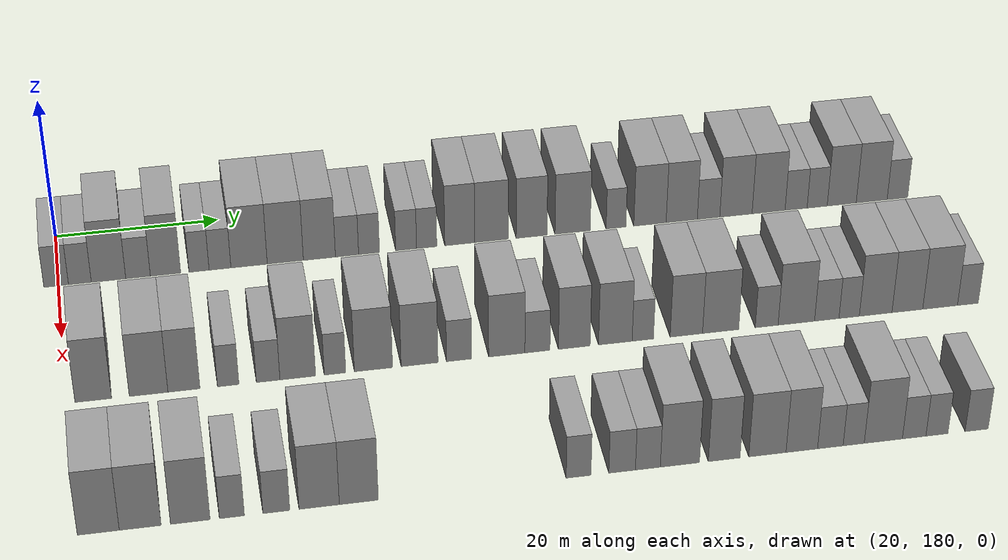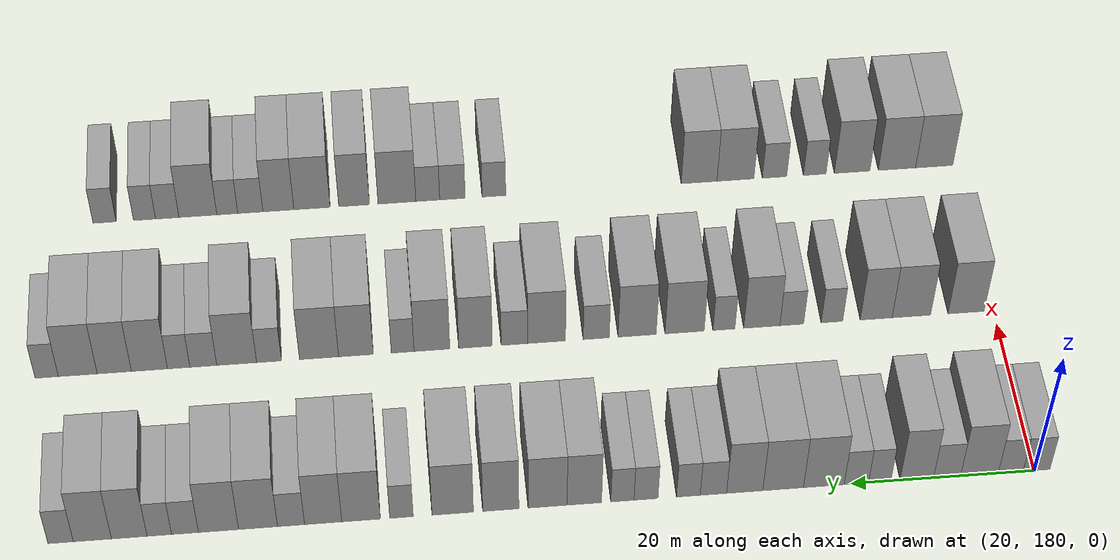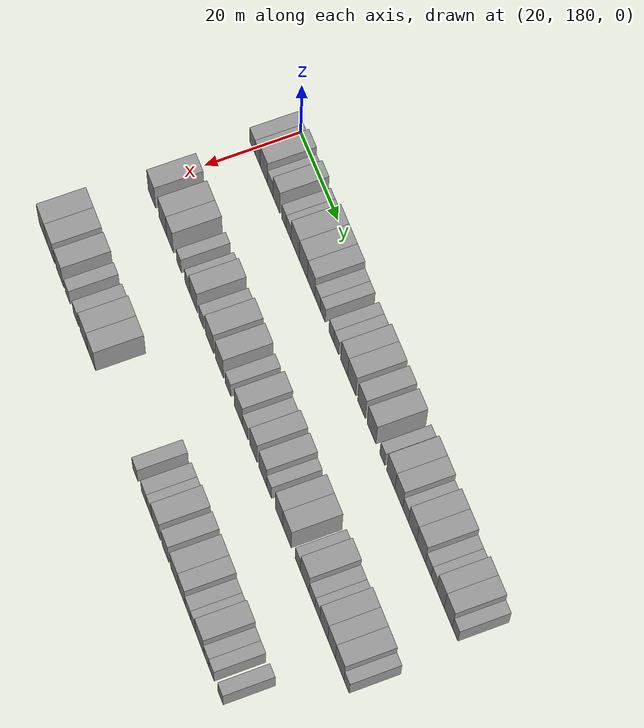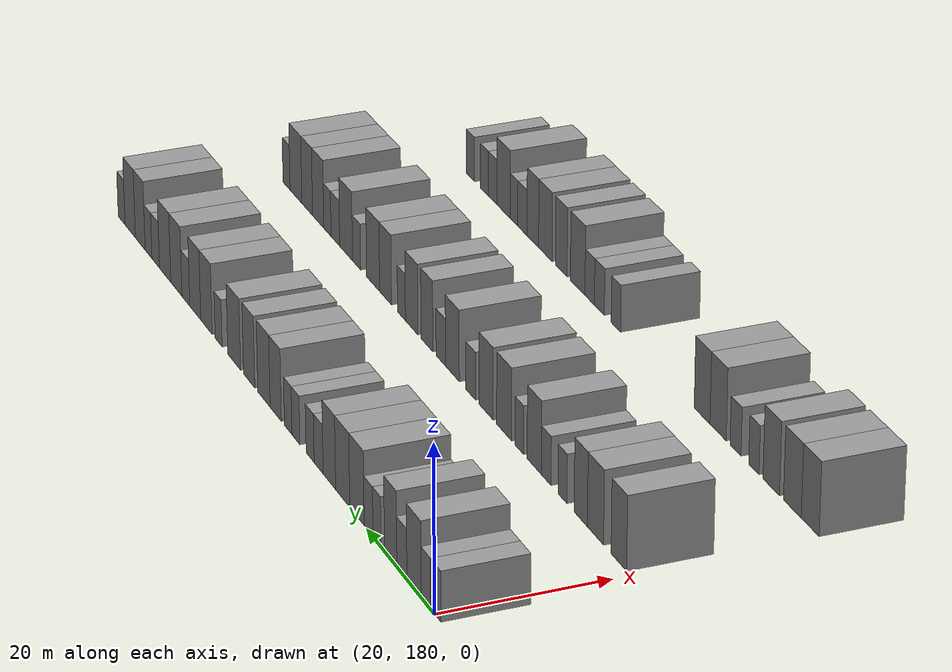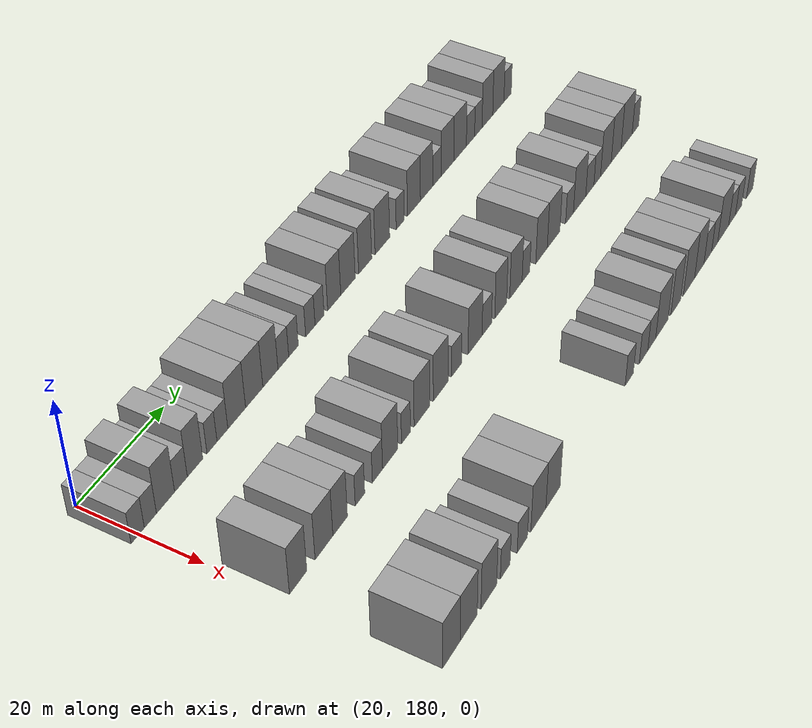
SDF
<sdf version="1.6">
 <world name="default">
  <model name="building_134">
   <static>1</static>
   <pose>25.0000 179.7267 0 0.000000 0.000000 0.000000</pose>
   <link name="link">
    <pose>0 0 3.00 0 0 0</pose>
    <collision name="collision"><geometry><box><size>10.0000 2.9367 6.0000</size></box></geometry></collision>
    <visual name="visual">
     <cast_shadows>0</cast_shadows>
     <geometry><box><size>10.0000 2.9367 6.0000</size></box></geometry>
     <material>
      <script>
       <uri>model://grey_wall/materials/scripts</uri>
       <uri>model://grey_wall/materials/textures</uri>
       <name>vrc/grey_wall</name>
      </script>
     </material>
    </visual>
   </link>
  </model>
  <model name="building_135">
   <static>1</static>
   <pose>25.0000 182.5558 0 0.000000 0.000000 0.000000</pose>
   <link name="link">
    <pose>0 0 3.00 0 0 0</pose>
    <collision name="collision"><geometry><box><size>10.0000 2.7216 6.0000</size></box></geometry></collision>
    <visual name="visual">
     <cast_shadows>0</cast_shadows>
     <geometry><box><size>10.0000 2.7216 6.0000</size></box></geometry>
     <material>
      <script>
       <uri>model://grey_wall/materials/scripts</uri>
       <uri>model://grey_wall/materials/textures</uri>
       <name>vrc/grey_wall</name>
      </script>
     </material>
    </visual>
   </link>
  </model>
  <model name="building_136">
   <static>1</static>
   <pose>25.0000 185.9804 0 0.000000 0.000000 0.000000</pose>
   <link name="link">
    <pose>0 0 4.50 0 0 0</pose>
    <collision name="collision"><geometry><box><size>10.0000 4.1276 9.0000</size></box></geometry></collision>
    <visual name="visual">
     <cast_shadows>0</cast_shadows>
     <geometry><box><size>10.0000 4.1276 9.0000</size></box></geometry>
     <material>
      <script>
       <uri>model://grey_wall/materials/scripts</uri>
       <uri>model://grey_wall/materials/textures</uri>
       <name>vrc/grey_wall</name>
      </script>
     </material>
    </visual>
   </link>
  </model>
  <model name="building_137">
   <static>1</static>
   <pose>25.0000 189.5231 0 0.000000 0.000000 0.000000</pose>
   <link name="link">
    <pose>0 0 3.00 0 0 0</pose>
    <collision name="collision"><geometry><box><size>10.0000 2.9577 6.0000</size></box></geometry></collision>
    <visual name="visual">
     <cast_shadows>0</cast_shadows>
     <geometry><box><size>10.0000 2.9577 6.0000</size></box></geometry>
     <material>
      <script>
       <uri>model://grey_wall/materials/scripts</uri>
       <uri>model://grey_wall/materials/textures</uri>
       <name>vrc/grey_wall</name>
      </script>
     </material>
    </visual>
   </link>
  </model>
  <model name="building_138">
   <static>1</static>
   <pose>25.0000 192.8265 0 0.000000 0.000000 0.000000</pose>
   <link name="link">
    <pose>0 0 4.50 0 0 0</pose>
    <collision name="collision"><geometry><box><size>10.0000 3.6492 9.0000</size></box></geometry></collision>
    <visual name="visual">
     <cast_shadows>0</cast_shadows>
     <geometry><box><size>10.0000 3.6492 9.0000</size></box></geometry>
     <material>
      <script>
       <uri>model://grey_wall/materials/scripts</uri>
       <uri>model://grey_wall/materials/textures</uri>
       <name>vrc/grey_wall</name>
      </script>
     </material>
    </visual>
   </link>
  </model>
  <model name="building_139">
   <static>1</static>
   <pose>25.0000 196.8674 0 0.000000 0.000000 0.000000</pose>
   <link name="link">
    <pose>0 0 3.00 0 0 0</pose>
    <collision name="collision"><geometry><box><size>10.0000 2.4325 6.0000</size></box></geometry></collision>
    <visual name="visual">
     <cast_shadows>0</cast_shadows>
     <geometry><box><size>10.0000 2.4325 6.0000</size></box></geometry>
     <material>
      <script>
       <uri>model://grey_wall/materials/scripts</uri>
       <uri>model://grey_wall/materials/textures</uri>
       <name>vrc/grey_wall</name>
      </script>
     </material>
    </visual>
   </link>
  </model>
  <model name="building_140">
   <static>1</static>
   <pose>25.0000 199.4056 0 0.000000 0.000000 0.000000</pose>
   <link name="link">
    <pose>0 0 3.00 0 0 0</pose>
    <collision name="collision"><geometry><box><size>10.0000 2.6439 6.0000</size></box></geometry></collision>
    <visual name="visual">
     <cast_shadows>0</cast_shadows>
     <geometry><box><size>10.0000 2.6439 6.0000</size></box></geometry>
     <material>
      <script>
       <uri>model://grey_wall/materials/scripts</uri>
       <uri>model://grey_wall/materials/textures</uri>
       <name>vrc/grey_wall</name>
      </script>
     </material>
    </visual>
   </link>
  </model>
  <model name="building_141">
   <static>1</static>
   <pose>25.0000 202.9381 0 0.000000 0.000000 0.000000</pose>
   <link name="link">
    <pose>0 0 4.50 0 0 0</pose>
    <collision name="collision"><geometry><box><size>10.0000 4.4211 9.0000</size></box></geometry></collision>
    <visual name="visual">
     <cast_shadows>0</cast_shadows>
     <geometry><box><size>10.0000 4.4211 9.0000</size></box></geometry>
     <material>
      <script>
       <uri>model://grey_wall/materials/scripts</uri>
       <uri>model://grey_wall/materials/textures</uri>
       <name>vrc/grey_wall</name>
      </script>
     </material>
    </visual>
   </link>
  </model>
  <model name="building_142">
   <static>1</static>
   <pose>25.0000 207.3509 0 0.000000 0.000000 0.000000</pose>
   <link name="link">
    <pose>0 0 4.50 0 0 0</pose>
    <collision name="collision"><geometry><box><size>10.0000 4.4045 9.0000</size></box></geometry></collision>
    <visual name="visual">
     <cast_shadows>0</cast_shadows>
     <geometry><box><size>10.0000 4.4045 9.0000</size></box></geometry>
     <material>
      <script>
       <uri>model://grey_wall/materials/scripts</uri>
       <uri>model://grey_wall/materials/textures</uri>
       <name>vrc/grey_wall</name>
      </script>
     </material>
    </visual>
   </link>
  </model>
  <model name="building_143">
   <static>1</static>
   <pose>25.0000 211.5168 0 0.000000 0.000000 0.000000</pose>
   <link name="link">
    <pose>0 0 4.50 0 0 0</pose>
    <collision name="collision"><geometry><box><size>10.0000 3.9274 9.0000</size></box></geometry></collision>
    <visual name="visual">
     <cast_shadows>0</cast_shadows>
     <geometry><box><size>10.0000 3.9274 9.0000</size></box></geometry>
     <material>
      <script>
       <uri>model://grey_wall/materials/scripts</uri>
       <uri>model://grey_wall/materials/textures</uri>
       <name>vrc/grey_wall</name>
      </script>
     </material>
    </visual>
   </link>
  </model>
  <model name="building_144">
   <static>1</static>
   <pose>25.0000 214.9024 0 0.000000 0.000000 0.000000</pose>
   <link name="link">
    <pose>0 0 3.00 0 0 0</pose>
    <collision name="collision"><geometry><box><size>10.0000 2.8437 6.0000</size></box></geometry></collision>
    <visual name="visual">
     <cast_shadows>0</cast_shadows>
     <geometry><box><size>10.0000 2.8437 6.0000</size></box></geometry>
     <material>
      <script>
       <uri>model://grey_wall/materials/scripts</uri>
       <uri>model://grey_wall/materials/textures</uri>
       <name>vrc/grey_wall</name>
      </script>
     </material>
    </visual>
   </link>
  </model>
  <model name="building_145">
   <static>1</static>
   <pose>25.0000 217.6090 0 0.000000 0.000000 0.000000</pose>
   <link name="link">
    <pose>0 0 3.00 0 0 0</pose>
    <collision name="collision"><geometry><box><size>10.0000 2.5694 6.0000</size></box></geometry></collision>
    <visual name="visual">
     <cast_shadows>0</cast_shadows>
     <geometry><box><size>10.0000 2.5694 6.0000</size></box></geometry>
     <material>
      <script>
       <uri>model://grey_wall/materials/scripts</uri>
       <uri>model://grey_wall/materials/textures</uri>
       <name>vrc/grey_wall</name>
      </script>
     </material>
    </visual>
   </link>
  </model>
  <model name="building_146">
   <static>1</static>
   <pose>25.0000 222.1825 0 0.000000 0.000000 0.000000</pose>
   <link name="link">
    <pose>0 0 3.00 0 0 0</pose>
    <collision name="collision"><geometry><box><size>10.0000 2.5777 6.0000</size></box></geometry></collision>
    <visual name="visual">
     <cast_shadows>0</cast_shadows>
     <geometry><box><size>10.0000 2.5777 6.0000</size></box></geometry>
     <material>
      <script>
       <uri>model://grey_wall/materials/scripts</uri>
       <uri>model://grey_wall/materials/textures</uri>
       <name>vrc/grey_wall</name>
      </script>
     </material>
    </visual>
   </link>
  </model>
  <model name="building_147">
   <static>1</static>
   <pose>25.0000 224.7205 0 0.000000 0.000000 0.000000</pose>
   <link name="link">
    <pose>0 0 3.00 0 0 0</pose>
    <collision name="collision"><geometry><box><size>10.0000 2.4983 6.0000</size></box></geometry></collision>
    <visual name="visual">
     <cast_shadows>0</cast_shadows>
     <geometry><box><size>10.0000 2.4983 6.0000</size></box></geometry>
     <material>
      <script>
       <uri>model://grey_wall/materials/scripts</uri>
       <uri>model://grey_wall/materials/textures</uri>
       <name>vrc/grey_wall</name>
      </script>
     </material>
    </visual>
   </link>
  </model>
  <model name="building_148">
   <static>1</static>
   <pose>25.0000 228.8245 0 0.000000 0.000000 0.000000</pose>
   <link name="link">
    <pose>0 0 4.50 0 0 0</pose>
    <collision name="collision"><geometry><box><size>10.0000 3.7097 9.0000</size></box></geometry></collision>
    <visual name="visual">
     <cast_shadows>0</cast_shadows>
     <geometry><box><size>10.0000 3.7097 9.0000</size></box></geometry>
     <material>
      <script>
       <uri>model://grey_wall/materials/scripts</uri>
       <uri>model://grey_wall/materials/textures</uri>
       <name>vrc/grey_wall</name>
      </script>
     </material>
    </visual>
   </link>
  </model>
  <model name="building_149">
   <static>1</static>
   <pose>25.0000 232.7658 0 0.000000 0.000000 0.000000</pose>
   <link name="link">
    <pose>0 0 4.50 0 0 0</pose>
    <collision name="collision"><geometry><box><size>10.0000 4.1727 9.0000</size></box></geometry></collision>
    <visual name="visual">
     <cast_shadows>0</cast_shadows>
     <geometry><box><size>10.0000 4.1727 9.0000</size></box></geometry>
     <material>
      <script>
       <uri>model://grey_wall/materials/scripts</uri>
       <uri>model://grey_wall/materials/textures</uri>
       <name>vrc/grey_wall</name>
      </script>
     </material>
    </visual>
   </link>
  </model>
  <model name="building_150">
   <static>1</static>
   <pose>25.0000 237.7819 0 0.000000 0.000000 0.000000</pose>
   <link name="link">
    <pose>0 0 4.50 0 0 0</pose>
    <collision name="collision"><geometry><box><size>10.0000 3.8595 9.0000</size></box></geometry></collision>
    <visual name="visual">
     <cast_shadows>0</cast_shadows>
     <geometry><box><size>10.0000 3.8595 9.0000</size></box></geometry>
     <material>
      <script>
       <uri>model://grey_wall/materials/scripts</uri>
       <uri>model://grey_wall/materials/textures</uri>
       <name>vrc/grey_wall</name>
      </script>
     </material>
    </visual>
   </link>
  </model>
  <model name="building_151">
   <static>1</static>
   <pose>25.0000 242.9237 0 0.000000 0.000000 0.000000</pose>
   <link name="link">
    <pose>0 0 4.50 0 0 0</pose>
    <collision name="collision"><geometry><box><size>10.0000 4.4240 9.0000</size></box></geometry></collision>
    <visual name="visual">
     <cast_shadows>0</cast_shadows>
     <geometry><box><size>10.0000 4.4240 9.0000</size></box></geometry>
     <material>
      <script>
       <uri>model://grey_wall/materials/scripts</uri>
       <uri>model://grey_wall/materials/textures</uri>
       <name>vrc/grey_wall</name>
      </script>
     </material>
    </visual>
   </link>
  </model>
  <model name="building_152">
   <static>1</static>
   <pose>25.0000 248.3873 0 0.000000 0.000000 0.000000</pose>
   <link name="link">
    <pose>0 0 3.00 0 0 0</pose>
    <collision name="collision"><geometry><box><size>10.0000 2.5032 6.0000</size></box></geometry></collision>
    <visual name="visual">
     <cast_shadows>0</cast_shadows>
     <geometry><box><size>10.0000 2.5032 6.0000</size></box></geometry>
     <material>
      <script>
       <uri>model://grey_wall/materials/scripts</uri>
       <uri>model://grey_wall/materials/textures</uri>
       <name>vrc/grey_wall</name>
      </script>
     </material>
    </visual>
   </link>
  </model>
  <model name="building_153">
   <static>1</static>
   <pose>25.0000 252.6890 0 0.000000 0.000000 0.000000</pose>
   <link name="link">
    <pose>0 0 4.50 0 0 0</pose>
    <collision name="collision"><geometry><box><size>10.0000 4.1002 9.0000</size></box></geometry></collision>
    <visual name="visual">
     <cast_shadows>0</cast_shadows>
     <geometry><box><size>10.0000 4.1002 9.0000</size></box></geometry>
     <material>
      <script>
       <uri>model://grey_wall/materials/scripts</uri>
       <uri>model://grey_wall/materials/textures</uri>
       <name>vrc/grey_wall</name>
      </script>
     </material>
    </visual>
   </link>
  </model>
  <model name="building_154">
   <static>1</static>
   <pose>25.0000 256.7204 0 0.000000 0.000000 0.000000</pose>
   <link name="link">
    <pose>0 0 4.50 0 0 0</pose>
    <collision name="collision"><geometry><box><size>10.0000 3.9628 9.0000</size></box></geometry></collision>
    <visual name="visual">
     <cast_shadows>0</cast_shadows>
     <geometry><box><size>10.0000 3.9628 9.0000</size></box></geometry>
     <material>
      <script>
       <uri>model://grey_wall/materials/scripts</uri>
       <uri>model://grey_wall/materials/textures</uri>
       <name>vrc/grey_wall</name>
      </script>
     </material>
    </visual>
   </link>
  </model>
  <model name="building_155">
   <static>1</static>
   <pose>25.0000 260.1354 0 0.000000 0.000000 0.000000</pose>
   <link name="link">
    <pose>0 0 3.00 0 0 0</pose>
    <collision name="collision"><geometry><box><size>10.0000 2.8671 6.0000</size></box></geometry></collision>
    <visual name="visual">
     <cast_shadows>0</cast_shadows>
     <geometry><box><size>10.0000 2.8671 6.0000</size></box></geometry>
     <material>
      <script>
       <uri>model://grey_wall/materials/scripts</uri>
       <uri>model://grey_wall/materials/textures</uri>
       <name>vrc/grey_wall</name>
      </script>
     </material>
    </visual>
   </link>
  </model>
  <model name="building_156">
   <static>1</static>
   <pose>25.0000 263.6339 0 0.000000 0.000000 0.000000</pose>
   <link name="link">
    <pose>0 0 4.50 0 0 0</pose>
    <collision name="collision"><geometry><box><size>10.0000 4.1300 9.0000</size></box></geometry></collision>
    <visual name="visual">
     <cast_shadows>0</cast_shadows>
     <geometry><box><size>10.0000 4.1300 9.0000</size></box></geometry>
     <material>
      <script>
       <uri>model://grey_wall/materials/scripts</uri>
       <uri>model://grey_wall/materials/textures</uri>
       <name>vrc/grey_wall</name>
      </script>
     </material>
    </visual>
   </link>
  </model>
  <model name="building_157">
   <static>1</static>
   <pose>25.0000 267.8165 0 0.000000 0.000000 0.000000</pose>
   <link name="link">
    <pose>0 0 4.50 0 0 0</pose>
    <collision name="collision"><geometry><box><size>10.0000 4.2351 9.0000</size></box></geometry></collision>
    <visual name="visual">
     <cast_shadows>0</cast_shadows>
     <geometry><box><size>10.0000 4.2351 9.0000</size></box></geometry>
     <material>
      <script>
       <uri>model://grey_wall/materials/scripts</uri>
       <uri>model://grey_wall/materials/textures</uri>
       <name>vrc/grey_wall</name>
      </script>
     </material>
    </visual>
   </link>
  </model>
  <model name="building_158">
   <static>1</static>
   <pose>25.0000 271.3555 0 0.000000 0.000000 0.000000</pose>
   <link name="link">
    <pose>0 0 3.00 0 0 0</pose>
    <collision name="collision"><geometry><box><size>10.0000 2.8431 6.0000</size></box></geometry></collision>
    <visual name="visual">
     <cast_shadows>0</cast_shadows>
     <geometry><box><size>10.0000 2.8431 6.0000</size></box></geometry>
     <material>
      <script>
       <uri>model://grey_wall/materials/scripts</uri>
       <uri>model://grey_wall/materials/textures</uri>
       <name>vrc/grey_wall</name>
      </script>
     </material>
    </visual>
   </link>
  </model>
  <model name="building_159">
   <static>1</static>
   <pose>25.0000 274.0740 0 0.000000 0.000000 0.000000</pose>
   <link name="link">
    <pose>0 0 3.00 0 0 0</pose>
    <collision name="collision"><geometry><box><size>10.0000 2.5939 6.0000</size></box></geometry></collision>
    <visual name="visual">
     <cast_shadows>0</cast_shadows>
     <geometry><box><size>10.0000 2.5939 6.0000</size></box></geometry>
     <material>
      <script>
       <uri>model://grey_wall/materials/scripts</uri>
       <uri>model://grey_wall/materials/textures</uri>
       <name>vrc/grey_wall</name>
      </script>
     </material>
    </visual>
   </link>
  </model>
  <model name="building_160">
   <static>1</static>
   <pose>25.0000 277.2462 0 0.000000 0.000000 0.000000</pose>
   <link name="link">
    <pose>0 0 4.50 0 0 0</pose>
    <collision name="collision"><geometry><box><size>10.0000 3.7505 9.0000</size></box></geometry></collision>
    <visual name="visual">
     <cast_shadows>0</cast_shadows>
     <geometry><box><size>10.0000 3.7505 9.0000</size></box></geometry>
     <material>
      <script>
       <uri>model://grey_wall/materials/scripts</uri>
       <uri>model://grey_wall/materials/textures</uri>
       <name>vrc/grey_wall</name>
      </script>
     </material>
    </visual>
   </link>
  </model>
  <model name="building_161">
   <static>1</static>
   <pose>25.0000 281.1280 0 0.000000 0.000000 0.000000</pose>
   <link name="link">
    <pose>0 0 4.50 0 0 0</pose>
    <collision name="collision"><geometry><box><size>10.0000 4.0131 9.0000</size></box></geometry></collision>
    <visual name="visual">
     <cast_shadows>0</cast_shadows>
     <geometry><box><size>10.0000 4.0131 9.0000</size></box></geometry>
     <material>
      <script>
       <uri>model://grey_wall/materials/scripts</uri>
       <uri>model://grey_wall/materials/textures</uri>
       <name>vrc/grey_wall</name>
      </script>
     </material>
    </visual>
   </link>
  </model>
  <model name="building_162">
   <static>1</static>
   <pose>25.0000 284.4673 0 0.000000 0.000000 0.000000</pose>
   <link name="link">
    <pose>0 0 3.00 0 0 0</pose>
    <collision name="collision"><geometry><box><size>10.0000 2.6654 6.0000</size></box></geometry></collision>
    <visual name="visual">
     <cast_shadows>0</cast_shadows>
     <geometry><box><size>10.0000 2.6654 6.0000</size></box></geometry>
     <material>
      <script>
       <uri>model://grey_wall/materials/scripts</uri>
       <uri>model://grey_wall/materials/textures</uri>
       <name>vrc/grey_wall</name>
      </script>
     </material>
    </visual>
   </link>
  </model>
  <model name="building_311">
   <static>1</static>
   <pose>47.0000 183.1259 0 0.000000 0.000000 0.000000</pose>
   <link name="link">
    <pose>0 0 4.50 0 0 0</pose>
    <collision name="collision"><geometry><box><size>10.0000 4.1401 9.0000</size></box></geometry></collision>
    <visual name="visual">
     <cast_shadows>0</cast_shadows>
     <geometry><box><size>10.0000 4.1401 9.0000</size></box></geometry>
     <material>
      <script>
       <uri>model://grey_wall/materials/scripts</uri>
       <uri>model://grey_wall/materials/textures</uri>
       <name>vrc/grey_wall</name>
      </script>
     </material>
    </visual>
   </link>
  </model>
  <model name="building_312">
   <static>1</static>
   <pose>47.0000 189.3923 0 0.000000 0.000000 0.000000</pose>
   <link name="link">
    <pose>0 0 4.50 0 0 0</pose>
    <collision name="collision"><geometry><box><size>10.0000 4.3926 9.0000</size></box></geometry></collision>
    <visual name="visual">
     <cast_shadows>0</cast_shadows>
     <geometry><box><size>10.0000 4.3926 9.0000</size></box></geometry>
     <material>
      <script>
       <uri>model://grey_wall/materials/scripts</uri>
       <uri>model://grey_wall/materials/textures</uri>
       <name>vrc/grey_wall</name>
      </script>
     </material>
    </visual>
   </link>
  </model>
  <model name="building_313">
   <static>1</static>
   <pose>47.0000 193.4168 0 0.000000 0.000000 0.000000</pose>
   <link name="link">
    <pose>0 0 4.50 0 0 0</pose>
    <collision name="collision"><geometry><box><size>10.0000 3.6564 9.0000</size></box></geometry></collision>
    <visual name="visual">
     <cast_shadows>0</cast_shadows>
     <geometry><box><size>10.0000 3.6564 9.0000</size></box></geometry>
     <material>
      <script>
       <uri>model://grey_wall/materials/scripts</uri>
       <uri>model://grey_wall/materials/textures</uri>
       <name>vrc/grey_wall</name>
      </script>
     </material>
    </visual>
   </link>
  </model>
  <model name="building_314">
   <static>1</static>
   <pose>47.0000 198.4747 0 0.000000 0.000000 0.000000</pose>
   <link name="link">
    <pose>0 0 3.00 0 0 0</pose>
    <collision name="collision"><geometry><box><size>10.0000 2.4593 6.0000</size></box></geometry></collision>
    <visual name="visual">
     <cast_shadows>0</cast_shadows>
     <geometry><box><size>10.0000 2.4593 6.0000</size></box></geometry>
     <material>
      <script>
       <uri>model://grey_wall/materials/scripts</uri>
       <uri>model://grey_wall/materials/textures</uri>
       <name>vrc/grey_wall</name>
      </script>
     </material>
    </visual>
   </link>
  </model>
  <model name="building_315">
   <static>1</static>
   <pose>47.0000 203.0612 0 0.000000 0.000000 0.000000</pose>
   <link name="link">
    <pose>0 0 3.00 0 0 0</pose>
    <collision name="collision"><geometry><box><size>10.0000 2.7138 6.0000</size></box></geometry></collision>
    <visual name="visual">
     <cast_shadows>0</cast_shadows>
     <geometry><box><size>10.0000 2.7138 6.0000</size></box></geometry>
     <material>
      <script>
       <uri>model://grey_wall/materials/scripts</uri>
       <uri>model://grey_wall/materials/textures</uri>
       <name>vrc/grey_wall</name>
      </script>
     </material>
    </visual>
   </link>
  </model>
  <model name="building_316">
   <static>1</static>
   <pose>47.0000 206.4744 0 0.000000 0.000000 0.000000</pose>
   <link name="link">
    <pose>0 0 4.50 0 0 0</pose>
    <collision name="collision"><geometry><box><size>10.0000 4.1125 9.0000</size></box></geometry></collision>
    <visual name="visual">
     <cast_shadows>0</cast_shadows>
     <geometry><box><size>10.0000 4.1125 9.0000</size></box></geometry>
     <material>
      <script>
       <uri>model://grey_wall/materials/scripts</uri>
       <uri>model://grey_wall/materials/textures</uri>
       <name>vrc/grey_wall</name>
      </script>
     </material>
    </visual>
   </link>
  </model>
  <model name="building_317">
   <static>1</static>
   <pose>47.0000 210.7761 0 0.000000 0.000000 0.000000</pose>
   <link name="link">
    <pose>0 0 3.00 0 0 0</pose>
    <collision name="collision"><geometry><box><size>10.0000 2.4908 6.0000</size></box></geometry></collision>
    <visual name="visual">
     <cast_shadows>0</cast_shadows>
     <geometry><box><size>10.0000 2.4908 6.0000</size></box></geometry>
     <material>
      <script>
       <uri>model://grey_wall/materials/scripts</uri>
       <uri>model://grey_wall/materials/textures</uri>
       <name>vrc/grey_wall</name>
      </script>
     </material>
    </visual>
   </link>
  </model>
  <model name="building_318">
   <static>1</static>
   <pose>47.0000 215.2409 0 0.000000 0.000000 0.000000</pose>
   <link name="link">
    <pose>0 0 4.50 0 0 0</pose>
    <collision name="collision"><geometry><box><size>10.0000 4.4387 9.0000</size></box></geometry></collision>
    <visual name="visual">
     <cast_shadows>0</cast_shadows>
     <geometry><box><size>10.0000 4.4387 9.0000</size></box></geometry>
     <material>
      <script>
       <uri>model://grey_wall/materials/scripts</uri>
       <uri>model://grey_wall/materials/textures</uri>
       <name>vrc/grey_wall</name>
      </script>
     </material>
    </visual>
   </link>
  </model>
  <model name="building_319">
   <static>1</static>
   <pose>47.0000 220.6147 0 0.000000 0.000000 0.000000</pose>
   <link name="link">
    <pose>0 0 4.50 0 0 0</pose>
    <collision name="collision"><geometry><box><size>10.0000 4.3089 9.0000</size></box></geometry></collision>
    <visual name="visual">
     <cast_shadows>0</cast_shadows>
     <geometry><box><size>10.0000 4.3089 9.0000</size></box></geometry>
     <material>
      <script>
       <uri>model://grey_wall/materials/scripts</uri>
       <uri>model://grey_wall/materials/textures</uri>
       <name>vrc/grey_wall</name>
      </script>
     </material>
    </visual>
   </link>
  </model>
  <model name="building_320">
   <static>1</static>
   <pose>47.0000 225.2439 0 0.000000 0.000000 0.000000</pose>
   <link name="link">
    <pose>0 0 3.00 0 0 0</pose>
    <collision name="collision"><geometry><box><size>10.0000 2.9495 6.0000</size></box></geometry></collision>
    <visual name="visual">
     <cast_shadows>0</cast_shadows>
     <geometry><box><size>10.0000 2.9495 6.0000</size></box></geometry>
     <material>
      <script>
       <uri>model://grey_wall/materials/scripts</uri>
       <uri>model://grey_wall/materials/textures</uri>
       <name>vrc/grey_wall</name>
      </script>
     </material>
    </visual>
   </link>
  </model>
  <model name="building_321">
   <static>1</static>
   <pose>47.0000 230.8555 0 0.000000 0.000000 0.000000</pose>
   <link name="link">
    <pose>0 0 4.50 0 0 0</pose>
    <collision name="collision"><geometry><box><size>10.0000 4.2738 9.0000</size></box></geometry></collision>
    <visual name="visual">
     <cast_shadows>0</cast_shadows>
     <geometry><box><size>10.0000 4.2738 9.0000</size></box></geometry>
     <material>
      <script>
       <uri>model://grey_wall/materials/scripts</uri>
       <uri>model://grey_wall/materials/textures</uri>
       <name>vrc/grey_wall</name>
      </script>
     </material>
    </visual>
   </link>
  </model>
  <model name="building_322">
   <static>1</static>
   <pose>47.0000 234.4746 0 0.000000 0.000000 0.000000</pose>
   <link name="link">
    <pose>0 0 3.00 0 0 0</pose>
    <collision name="collision"><geometry><box><size>10.0000 2.9642 6.0000</size></box></geometry></collision>
    <visual name="visual">
     <cast_shadows>0</cast_shadows>
     <geometry><box><size>10.0000 2.9642 6.0000</size></box></geometry>
     <material>
      <script>
       <uri>model://grey_wall/materials/scripts</uri>
       <uri>model://grey_wall/materials/textures</uri>
       <name>vrc/grey_wall</name>
      </script>
     </material>
    </visual>
   </link>
  </model>
  <model name="building_323">
   <static>1</static>
   <pose>47.0000 238.8396 0 0.000000 0.000000 0.000000</pose>
   <link name="link">
    <pose>0 0 4.50 0 0 0</pose>
    <collision name="collision"><geometry><box><size>10.0000 3.7659 9.0000</size></box></geometry></collision>
    <visual name="visual">
     <cast_shadows>0</cast_shadows>
     <geometry><box><size>10.0000 3.7659 9.0000</size></box></geometry>
     <material>
      <script>
       <uri>model://grey_wall/materials/scripts</uri>
       <uri>model://grey_wall/materials/textures</uri>
       <name>vrc/grey_wall</name>
      </script>
     </material>
    </visual>
   </link>
  </model>
  <model name="building_324">
   <static>1</static>
   <pose>47.0000 243.7291 0 0.000000 0.000000 0.000000</pose>
   <link name="link">
    <pose>0 0 4.50 0 0 0</pose>
    <collision name="collision"><geometry><box><size>10.0000 4.0131 9.0000</size></box></geometry></collision>
    <visual name="visual">
     <cast_shadows>0</cast_shadows>
     <geometry><box><size>10.0000 4.0131 9.0000</size></box></geometry>
     <material>
      <script>
       <uri>model://grey_wall/materials/scripts</uri>
       <uri>model://grey_wall/materials/textures</uri>
       <name>vrc/grey_wall</name>
      </script>
     </material>
    </visual>
   </link>
  </model>
  <model name="building_325">
   <static>1</static>
   <pose>47.0000 247.0107 0 0.000000 0.000000 0.000000</pose>
   <link name="link">
    <pose>0 0 3.00 0 0 0</pose>
    <collision name="collision"><geometry><box><size>10.0000 2.5500 6.0000</size></box></geometry></collision>
    <visual name="visual">
     <cast_shadows>0</cast_shadows>
     <geometry><box><size>10.0000 2.5500 6.0000</size></box></geometry>
     <material>
      <script>
       <uri>model://grey_wall/materials/scripts</uri>
       <uri>model://grey_wall/materials/textures</uri>
       <name>vrc/grey_wall</name>
      </script>
     </material>
    </visual>
   </link>
  </model>
  <model name="building_326">
   <static>1</static>
   <pose>47.0000 252.2330 0 0.000000 0.000000 0.000000</pose>
   <link name="link">
    <pose>0 0 4.50 0 0 0</pose>
    <collision name="collision"><geometry><box><size>10.0000 3.8947 9.0000</size></box></geometry></collision>
    <visual name="visual">
     <cast_shadows>0</cast_shadows>
     <geometry><box><size>10.0000 3.8947 9.0000</size></box></geometry>
     <material>
      <script>
       <uri>model://grey_wall/materials/scripts</uri>
       <uri>model://grey_wall/materials/textures</uri>
       <name>vrc/grey_wall</name>
      </script>
     </material>
    </visual>
   </link>
  </model>
  <model name="building_327">
   <static>1</static>
   <pose>47.0000 256.3607 0 0.000000 0.000000 0.000000</pose>
   <link name="link">
    <pose>0 0 4.50 0 0 0</pose>
    <collision name="collision"><geometry><box><size>10.0000 4.3606 9.0000</size></box></geometry></collision>
    <visual name="visual">
     <cast_shadows>0</cast_shadows>
     <geometry><box><size>10.0000 4.3606 9.0000</size></box></geometry>
     <material>
      <script>
       <uri>model://grey_wall/materials/scripts</uri>
       <uri>model://grey_wall/materials/textures</uri>
       <name>vrc/grey_wall</name>
      </script>
     </material>
    </visual>
   </link>
  </model>
  <model name="building_328">
   <static>1</static>
   <pose>47.0000 261.9287 0 0.000000 0.000000 0.000000</pose>
   <link name="link">
    <pose>0 0 3.00 0 0 0</pose>
    <collision name="collision"><geometry><box><size>10.0000 2.7754 6.0000</size></box></geometry></collision>
    <visual name="visual">
     <cast_shadows>0</cast_shadows>
     <geometry><box><size>10.0000 2.7754 6.0000</size></box></geometry>
     <material>
      <script>
       <uri>model://grey_wall/materials/scripts</uri>
       <uri>model://grey_wall/materials/textures</uri>
       <name>vrc/grey_wall</name>
      </script>
     </material>
    </visual>
   </link>
  </model>
  <model name="building_329">
   <static>1</static>
   <pose>47.0000 265.5324 0 0.000000 0.000000 0.000000</pose>
   <link name="link">
    <pose>0 0 4.50 0 0 0</pose>
    <collision name="collision"><geometry><box><size>10.0000 4.4320 9.0000</size></box></geometry></collision>
    <visual name="visual">
     <cast_shadows>0</cast_shadows>
     <geometry><box><size>10.0000 4.4320 9.0000</size></box></geometry>
     <material>
      <script>
       <uri>model://grey_wall/materials/scripts</uri>
       <uri>model://grey_wall/materials/textures</uri>
       <name>vrc/grey_wall</name>
      </script>
     </material>
    </visual>
   </link>
  </model>
  <model name="building_330">
   <static>1</static>
   <pose>47.0000 269.2392 0 0.000000 0.000000 0.000000</pose>
   <link name="link">
    <pose>0 0 3.00 0 0 0</pose>
    <collision name="collision"><geometry><box><size>10.0000 2.9815 6.0000</size></box></geometry></collision>
    <visual name="visual">
     <cast_shadows>0</cast_shadows>
     <geometry><box><size>10.0000 2.9815 6.0000</size></box></geometry>
     <material>
      <script>
       <uri>model://grey_wall/materials/scripts</uri>
       <uri>model://grey_wall/materials/textures</uri>
       <name>vrc/grey_wall</name>
      </script>
     </material>
    </visual>
   </link>
  </model>
  <model name="building_331">
   <static>1</static>
   <pose>47.0000 271.9747 0 0.000000 0.000000 0.000000</pose>
   <link name="link">
    <pose>0 0 3.00 0 0 0</pose>
    <collision name="collision"><geometry><box><size>10.0000 2.4894 6.0000</size></box></geometry></collision>
    <visual name="visual">
     <cast_shadows>0</cast_shadows>
     <geometry><box><size>10.0000 2.4894 6.0000</size></box></geometry>
     <material>
      <script>
       <uri>model://grey_wall/materials/scripts</uri>
       <uri>model://grey_wall/materials/textures</uri>
       <name>vrc/grey_wall</name>
      </script>
     </material>
    </visual>
   </link>
  </model>
  <model name="building_332">
   <static>1</static>
   <pose>47.0000 275.2201 0 0.000000 0.000000 0.000000</pose>
   <link name="link">
    <pose>0 0 4.50 0 0 0</pose>
    <collision name="collision"><geometry><box><size>10.0000 4.0013 9.0000</size></box></geometry></collision>
    <visual name="visual">
     <cast_shadows>0</cast_shadows>
     <geometry><box><size>10.0000 4.0013 9.0000</size></box></geometry>
     <material>
      <script>
       <uri>model://grey_wall/materials/scripts</uri>
       <uri>model://grey_wall/materials/textures</uri>
       <name>vrc/grey_wall</name>
      </script>
     </material>
    </visual>
   </link>
  </model>
  <model name="building_333">
   <static>1</static>
   <pose>47.0000 279.1128 0 0.000000 0.000000 0.000000</pose>
   <link name="link">
    <pose>0 0 4.50 0 0 0</pose>
    <collision name="collision"><geometry><box><size>10.0000 3.7842 9.0000</size></box></geometry></collision>
    <visual name="visual">
     <cast_shadows>0</cast_shadows>
     <geometry><box><size>10.0000 3.7842 9.0000</size></box></geometry>
     <material>
      <script>
       <uri>model://grey_wall/materials/scripts</uri>
       <uri>model://grey_wall/materials/textures</uri>
       <name>vrc/grey_wall</name>
      </script>
     </material>
    </visual>
   </link>
  </model>
  <model name="building_334">
   <static>1</static>
   <pose>47.0000 283.1528 0 0.000000 0.000000 0.000000</pose>
   <link name="link">
    <pose>0 0 4.50 0 0 0</pose>
    <collision name="collision"><geometry><box><size>10.0000 4.2956 9.0000</size></box></geometry></collision>
    <visual name="visual">
     <cast_shadows>0</cast_shadows>
     <geometry><box><size>10.0000 4.2956 9.0000</size></box></geometry>
     <material>
      <script>
       <uri>model://grey_wall/materials/scripts</uri>
       <uri>model://grey_wall/materials/textures</uri>
       <name>vrc/grey_wall</name>
      </script>
     </material>
    </visual>
   </link>
  </model>
  <model name="building_335">
   <static>1</static>
   <pose>47.0000 286.5836 0 0.000000 0.000000 0.000000</pose>
   <link name="link">
    <pose>0 0 3.00 0 0 0</pose>
    <collision name="collision"><geometry><box><size>10.0000 2.5661 6.0000</size></box></geometry></collision>
    <visual name="visual">
     <cast_shadows>0</cast_shadows>
     <geometry><box><size>10.0000 2.5661 6.0000</size></box></geometry>
     <material>
      <script>
       <uri>model://grey_wall/materials/scripts</uri>
       <uri>model://grey_wall/materials/textures</uri>
       <name>vrc/grey_wall</name>
      </script>
     </material>
    </visual>
   </link>
  </model>
  <model name="building_507">
   <static>1</static>
   <pose>69.0000 182.6257 0 0.000000 0.000000 0.000000</pose>
   <link name="link">
    <pose>0 0 4.50 0 0 0</pose>
    <collision name="collision"><geometry><box><size>10.0000 4.4692 9.0000</size></box></geometry></collision>
    <visual name="visual">
     <cast_shadows>0</cast_shadows>
     <geometry><box><size>10.0000 4.4692 9.0000</size></box></geometry>
     <material>
      <script>
       <uri>model://grey_wall/materials/scripts</uri>
       <uri>model://grey_wall/materials/textures</uri>
       <name>vrc/grey_wall</name>
      </script>
     </material>
    </visual>
   </link>
  </model>
  <model name="building_508">
   <static>1</static>
   <pose>69.0000 187.0982 0 0.000000 0.000000 0.000000</pose>
   <link name="link">
    <pose>0 0 4.50 0 0 0</pose>
    <collision name="collision"><geometry><box><size>10.0000 4.4758 9.0000</size></box></geometry></collision>
    <visual name="visual">
     <cast_shadows>0</cast_shadows>
     <geometry><box><size>10.0000 4.4758 9.0000</size></box></geometry>
     <material>
      <script>
       <uri>model://grey_wall/materials/scripts</uri>
       <uri>model://grey_wall/materials/textures</uri>
       <name>vrc/grey_wall</name>
      </script>
     </material>
    </visual>
   </link>
  </model>
  <model name="building_509">
   <static>1</static>
   <pose>69.0000 192.4644 0 0.000000 0.000000 0.000000</pose>
   <link name="link">
    <pose>0 0 4.50 0 0 0</pose>
    <collision name="collision"><geometry><box><size>10.0000 4.2564 9.0000</size></box></geometry></collision>
    <visual name="visual">
     <cast_shadows>0</cast_shadows>
     <geometry><box><size>10.0000 4.2564 9.0000</size></box></geometry>
     <material>
      <script>
       <uri>model://grey_wall/materials/scripts</uri>
       <uri>model://grey_wall/materials/textures</uri>
       <name>vrc/grey_wall</name>
      </script>
     </material>
    </visual>
   </link>
  </model>
  <model name="building_510">
   <static>1</static>
   <pose>69.0000 196.9426 0 0.000000 0.000000 0.000000</pose>
   <link name="link">
    <pose>0 0 3.00 0 0 0</pose>
    <collision name="collision"><geometry><box><size>10.0000 2.7000 6.0000</size></box></geometry></collision>
    <visual name="visual">
     <cast_shadows>0</cast_shadows>
     <geometry><box><size>10.0000 2.7000 6.0000</size></box></geometry>
     <material>
      <script>
       <uri>model://grey_wall/materials/scripts</uri>
       <uri>model://grey_wall/materials/textures</uri>
       <name>vrc/grey_wall</name>
      </script>
     </material>
    </visual>
   </link>
  </model>
  <model name="building_511">
   <static>1</static>
   <pose>69.0000 201.7501 0 0.000000 0.000000 0.000000</pose>
   <link name="link">
    <pose>0 0 3.00 0 0 0</pose>
    <collision name="collision"><geometry><box><size>10.0000 2.9150 6.0000</size></box></geometry></collision>
    <visual name="visual">
     <cast_shadows>0</cast_shadows>
     <geometry><box><size>10.0000 2.9150 6.0000</size></box></geometry>
     <material>
      <script>
       <uri>model://grey_wall/materials/scripts</uri>
       <uri>model://grey_wall/materials/textures</uri>
       <name>vrc/grey_wall</name>
      </script>
     </material>
    </visual>
   </link>
  </model>
  <model name="building_512">
   <static>1</static>
   <pose>69.0000 206.4031 0 0.000000 0.000000 0.000000</pose>
   <link name="link">
    <pose>0 0 4.50 0 0 0</pose>
    <collision name="collision"><geometry><box><size>10.0000 4.3911 9.0000</size></box></geometry></collision>
    <visual name="visual">
     <cast_shadows>0</cast_shadows>
     <geometry><box><size>10.0000 4.3911 9.0000</size></box></geometry>
     <material>
      <script>
       <uri>model://grey_wall/materials/scripts</uri>
       <uri>model://grey_wall/materials/textures</uri>
       <name>vrc/grey_wall</name>
      </script>
     </material>
    </visual>
   </link>
  </model>
  <model name="building_513">
   <static>1</static>
   <pose>69.0000 210.7296 0 0.000000 0.000000 0.000000</pose>
   <link name="link">
    <pose>0 0 4.50 0 0 0</pose>
    <collision name="collision"><geometry><box><size>10.0000 4.2618 9.0000</size></box></geometry></collision>
    <visual name="visual">
     <cast_shadows>0</cast_shadows>
     <geometry><box><size>10.0000 4.2618 9.0000</size></box></geometry>
     <material>
      <script>
       <uri>model://grey_wall/materials/scripts</uri>
       <uri>model://grey_wall/materials/textures</uri>
       <name>vrc/grey_wall</name>
      </script>
     </material>
    </visual>
   </link>
  </model>
  <model name="building_514">
   <static>1</static>
   <pose>69.0000 235.0265 0 0.000000 0.000000 0.000000</pose>
   <link name="link">
    <pose>0 0 3.00 0 0 0</pose>
    <collision name="collision"><geometry><box><size>10.0000 2.7773 6.0000</size></box></geometry></collision>
    <visual name="visual">
     <cast_shadows>0</cast_shadows>
     <geometry><box><size>10.0000 2.7773 6.0000</size></box></geometry>
     <material>
      <script>
       <uri>model://grey_wall/materials/scripts</uri>
       <uri>model://grey_wall/materials/textures</uri>
       <name>vrc/grey_wall</name>
      </script>
     </material>
    </visual>
   </link>
  </model>
  <model name="building_515">
   <static>1</static>
   <pose>69.0000 239.9106 0 0.000000 0.000000 0.000000</pose>
   <link name="link">
    <pose>0 0 3.00 0 0 0</pose>
    <collision name="collision"><geometry><box><size>10.0000 2.9909 6.0000</size></box></geometry></collision>
    <visual name="visual">
     <cast_shadows>0</cast_shadows>
     <geometry><box><size>10.0000 2.9909 6.0000</size></box></geometry>
     <material>
      <script>
       <uri>model://grey_wall/materials/scripts</uri>
       <uri>model://grey_wall/materials/textures</uri>
       <name>vrc/grey_wall</name>
      </script>
     </material>
    </visual>
   </link>
  </model>
  <model name="building_516">
   <static>1</static>
   <pose>69.0000 242.8098 0 0.000000 0.000000 0.000000</pose>
   <link name="link">
    <pose>0 0 3.00 0 0 0</pose>
    <collision name="collision"><geometry><box><size>10.0000 2.8075 6.0000</size></box></geometry></collision>
    <visual name="visual">
     <cast_shadows>0</cast_shadows>
     <geometry><box><size>10.0000 2.8075 6.0000</size></box></geometry>
     <material>
      <script>
       <uri>model://grey_wall/materials/scripts</uri>
       <uri>model://grey_wall/materials/textures</uri>
       <name>vrc/grey_wall</name>
      </script>
     </material>
    </visual>
   </link>
  </model>
  <model name="building_517">
   <static>1</static>
   <pose>69.0000 246.4276 0 0.000000 0.000000 0.000000</pose>
   <link name="link">
    <pose>0 0 4.50 0 0 0</pose>
    <collision name="collision"><geometry><box><size>10.0000 4.4281 9.0000</size></box></geometry></collision>
    <visual name="visual">
     <cast_shadows>0</cast_shadows>
     <geometry><box><size>10.0000 4.4281 9.0000</size></box></geometry>
     <material>
      <script>
       <uri>model://grey_wall/materials/scripts</uri>
       <uri>model://grey_wall/materials/textures</uri>
       <name>vrc/grey_wall</name>
      </script>
     </material>
    </visual>
   </link>
  </model>
  <model name="building_518">
   <static>1</static>
   <pose>69.0000 251.4443 0 0.000000 0.000000 0.000000</pose>
   <link name="link">
    <pose>0 0 4.50 0 0 0</pose>
    <collision name="collision"><geometry><box><size>10.0000 3.6053 9.0000</size></box></geometry></collision>
    <visual name="visual">
     <cast_shadows>0</cast_shadows>
     <geometry><box><size>10.0000 3.6053 9.0000</size></box></geometry>
     <material>
      <script>
       <uri>model://grey_wall/materials/scripts</uri>
       <uri>model://grey_wall/materials/textures</uri>
       <name>vrc/grey_wall</name>
      </script>
     </material>
    </visual>
   </link>
  </model>
  <model name="building_519">
   <static>1</static>
   <pose>69.0000 256.3707 0 0.000000 0.000000 0.000000</pose>
   <link name="link">
    <pose>0 0 4.50 0 0 0</pose>
    <collision name="collision"><geometry><box><size>10.0000 4.2476 9.0000</size></box></geometry></collision>
    <visual name="visual">
     <cast_shadows>0</cast_shadows>
     <geometry><box><size>10.0000 4.2476 9.0000</size></box></geometry>
     <material>
      <script>
       <uri>model://grey_wall/materials/scripts</uri>
       <uri>model://grey_wall/materials/textures</uri>
       <name>vrc/grey_wall</name>
      </script>
     </material>
    </visual>
   </link>
  </model>
  <model name="building_520">
   <static>1</static>
   <pose>69.0000 260.3013 0 0.000000 0.000000 0.000000</pose>
   <link name="link">
    <pose>0 0 4.50 0 0 0</pose>
    <collision name="collision"><geometry><box><size>10.0000 3.6137 9.0000</size></box></geometry></collision>
    <visual name="visual">
     <cast_shadows>0</cast_shadows>
     <geometry><box><size>10.0000 3.6137 9.0000</size></box></geometry>
     <material>
      <script>
       <uri>model://grey_wall/materials/scripts</uri>
       <uri>model://grey_wall/materials/textures</uri>
       <name>vrc/grey_wall</name>
      </script>
     </material>
    </visual>
   </link>
  </model>
  <model name="building_521">
   <static>1</static>
   <pose>69.0000 263.5767 0 0.000000 0.000000 0.000000</pose>
   <link name="link">
    <pose>0 0 3.00 0 0 0</pose>
    <collision name="collision"><geometry><box><size>10.0000 2.9371 6.0000</size></box></geometry></collision>
    <visual name="visual">
     <cast_shadows>0</cast_shadows>
     <geometry><box><size>10.0000 2.9371 6.0000</size></box></geometry>
     <material>
      <script>
       <uri>model://grey_wall/materials/scripts</uri>
       <uri>model://grey_wall/materials/textures</uri>
       <name>vrc/grey_wall</name>
      </script>
     </material>
    </visual>
   </link>
  </model>
  <model name="building_522">
   <static>1</static>
   <pose>69.0000 266.2631 0 0.000000 0.000000 0.000000</pose>
   <link name="link">
    <pose>0 0 3.00 0 0 0</pose>
    <collision name="collision"><geometry><box><size>10.0000 2.4357 6.0000</size></box></geometry></collision>
    <visual name="visual">
     <cast_shadows>0</cast_shadows>
     <geometry><box><size>10.0000 2.4357 6.0000</size></box></geometry>
     <material>
      <script>
       <uri>model://grey_wall/materials/scripts</uri>
       <uri>model://grey_wall/materials/textures</uri>
       <name>vrc/grey_wall</name>
      </script>
     </material>
    </visual>
   </link>
  </model>
  <model name="building_523">
   <static>1</static>
   <pose>69.0000 269.6850 0 0.000000 0.000000 0.000000</pose>
   <link name="link">
    <pose>0 0 4.50 0 0 0</pose>
    <collision name="collision"><geometry><box><size>10.0000 4.4081 9.0000</size></box></geometry></collision>
    <visual name="visual">
     <cast_shadows>0</cast_shadows>
     <geometry><box><size>10.0000 4.4081 9.0000</size></box></geometry>
     <material>
      <script>
       <uri>model://grey_wall/materials/scripts</uri>
       <uri>model://grey_wall/materials/textures</uri>
       <name>vrc/grey_wall</name>
      </script>
     </material>
    </visual>
   </link>
  </model>
  <model name="building_524">
   <static>1</static>
   <pose>69.0000 273.2536 0 0.000000 0.000000 0.000000</pose>
   <link name="link">
    <pose>0 0 3.00 0 0 0</pose>
    <collision name="collision"><geometry><box><size>10.0000 2.7291 6.0000</size></box></geometry></collision>
    <visual name="visual">
     <cast_shadows>0</cast_shadows>
     <geometry><box><size>10.0000 2.7291 6.0000</size></box></geometry>
     <material>
      <script>
       <uri>model://grey_wall/materials/scripts</uri>
       <uri>model://grey_wall/materials/textures</uri>
       <name>vrc/grey_wall</name>
      </script>
     </material>
    </visual>
   </link>
  </model>
  <model name="building_525">
   <static>1</static>
   <pose>69.0000 275.8977 0 0.000000 0.000000 0.000000</pose>
   <link name="link">
    <pose>0 0 3.00 0 0 0</pose>
    <collision name="collision"><geometry><box><size>10.0000 2.5593 6.0000</size></box></geometry></collision>
    <visual name="visual">
     <cast_shadows>0</cast_shadows>
     <geometry><box><size>10.0000 2.5593 6.0000</size></box></geometry>
     <material>
      <script>
       <uri>model://grey_wall/materials/scripts</uri>
       <uri>model://grey_wall/materials/textures</uri>
       <name>vrc/grey_wall</name>
      </script>
     </material>
    </visual>
   </link>
  </model>
  <model name="building_526">
   <static>1</static>
   <pose>69.0000 280.5221 0 0.000000 0.000000 0.000000</pose>
   <link name="link">
    <pose>0 0 3.00 0 0 0</pose>
    <collision name="collision"><geometry><box><size>10.0000 2.6895 6.0000</size></box></geometry></collision>
    <visual name="visual">
     <cast_shadows>0</cast_shadows>
     <geometry><box><size>10.0000 2.6895 6.0000</size></box></geometry>
     <material>
      <script>
       <uri>model://grey_wall/materials/scripts</uri>
       <uri>model://grey_wall/materials/textures</uri>
       <name>vrc/grey_wall</name>
      </script>
     </material>
    </visual>
   </link>
  </model>
 </world>
</sdf>
